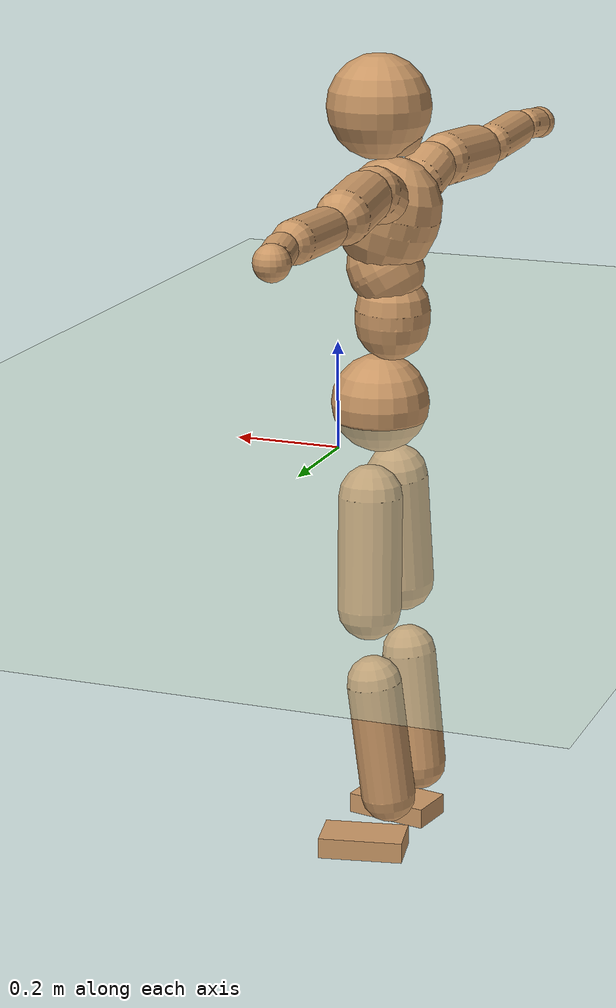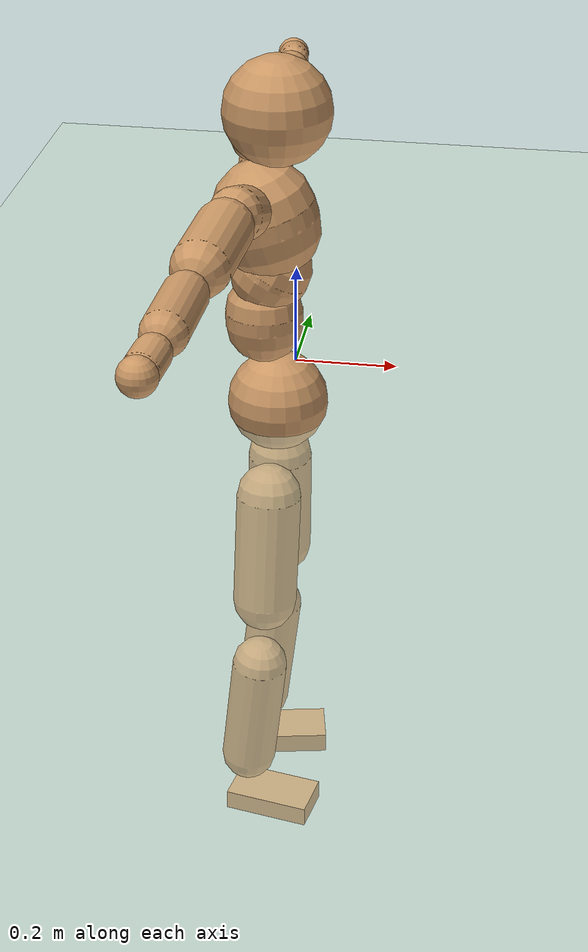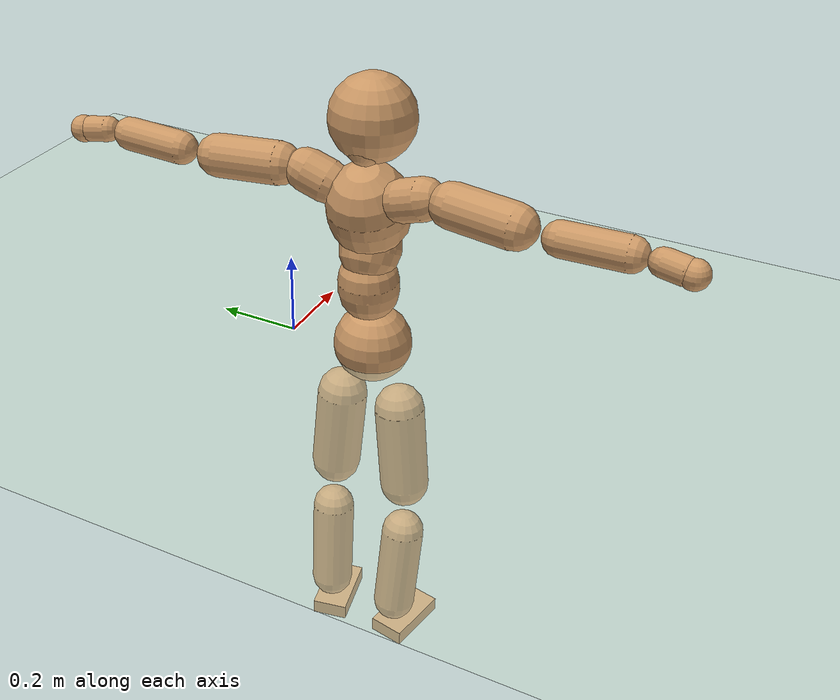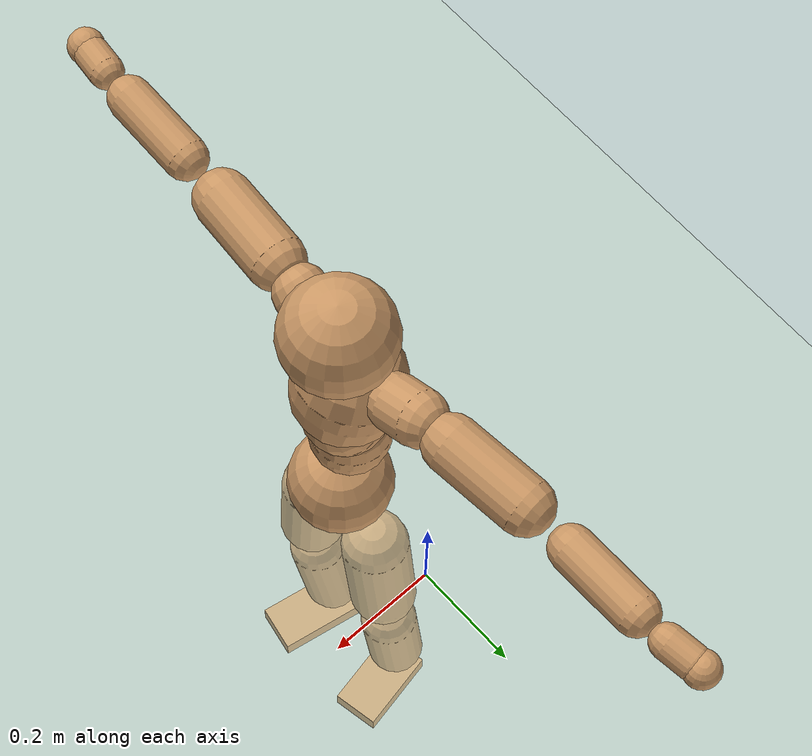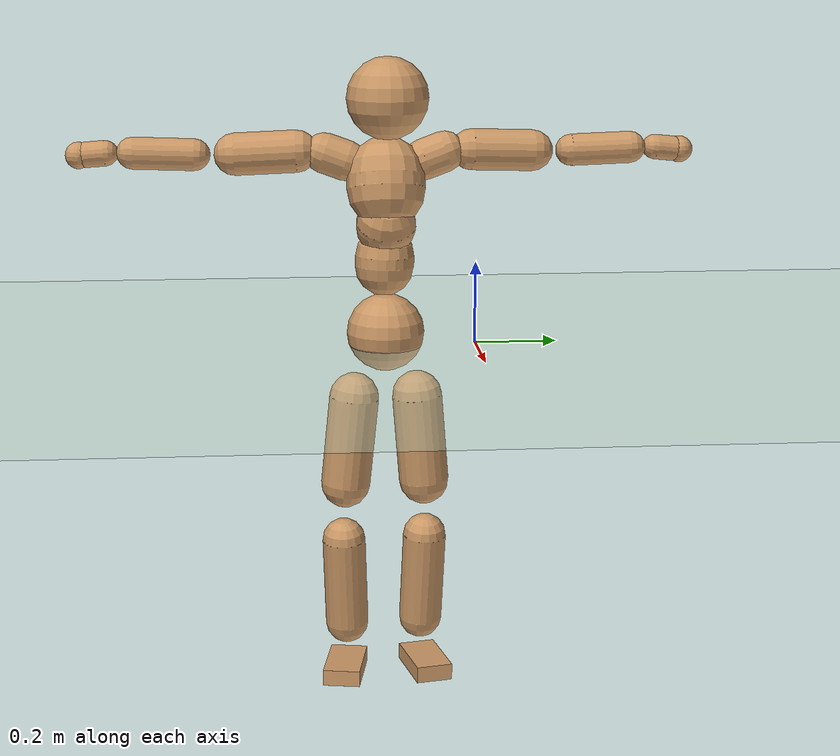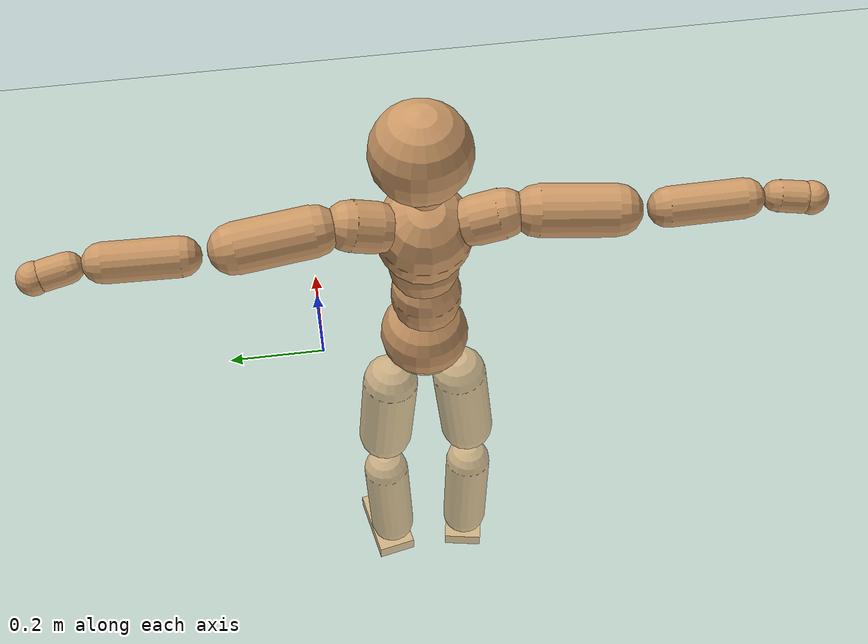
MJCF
<mujoco model="humanoid">
  <compiler coordinate="local"/>
  <default>
    <joint damping="0.0" armature="0.01" stiffness="0.0" limited="true"/>
    <geom conaffinity="1" condim="3" contype="7" margin="0.001" rgba="0.8 0.6 .4 1"/>
  </default>
  <asset>
    <texture type="skybox" builtin="gradient" rgb1=".4 .5 .6" rgb2="0 0 0" width="100" height="100"/>
    <texture builtin="flat" height="1278" mark="cross" markrgb="1 1 1" name="texgeom" random="0.01" rgb1="0.8 0.6 0.4" rgb2="0.8 0.6 0.4" type="cube" width="127"/>
    <texture builtin="checker" height="100" name="texplane" rgb1="0 0 0" rgb2="0.8 0.8 0.8" type="2d" width="100"/>
    <material name="MatPlane" reflectance="0.5" shininess="1" specular="1" texrepeat="60 60" texture="texplane"/>
    <material name="geom" texture="texgeom" texuniform="true"/>
  </asset>
  <worldbody>
    <light cutoff="100" diffuse="1 1 1" dir="-0 0 -1.3" directional="true" exponent="1" pos="0 0 1.3" specular=".1 .1 .1"/>
    <geom conaffinity="1" condim="3" name="floor" pos="0 0 0" rgba="0.8 0.9 0.8 1" size="100 100 .2" type="plane" material="MatPlane"/>
    <body name="Pelvis" pos="-0.0006 -0.2203 0.0304">
      <freejoint name="Pelvis"/>
      <geom type="sphere" contype="1" conaffinity="1" density="500" size="0.0946" pos="0.0000 0.0000 0.0000" name="Pelvis"/>
      <body name="L_Hip" pos="-0.0074 0.0726 -0.0918">
        <joint name="L_Hip_x" type="hinge" pos="0 0 0" axis="1 0 0" stiffness="800" damping="80" armature="0.02" range="-180.0000 180.0000"/>
        <joint name="L_Hip_y" type="hinge" pos="0 0 0" axis="0 1 0" stiffness="800" damping="80" armature="0.02" range="-180.0000 180.0000"/>
        <joint name="L_Hip_z" type="hinge" pos="0 0 0" axis="0 0 1" stiffness="800" damping="80" armature="0.02" range="-180.0000 180.0000"/>
        <geom type="capsule" contype="1" conaffinity="1" density="500" fromto="-0.0014 0.0061 -0.0730 -0.0055 0.0243 -0.2921" size="0.0615" name="L_Hip"/>
        <body name="L_Knee" pos="-0.0069 0.0304 -0.3652">
          <joint name="L_Knee_x" type="hinge" pos="0 0 0" axis="1 0 0" stiffness="800" damping="80" armature="0.02" range="-180.0000 180.0000"/>
          <joint name="L_Knee_y" type="hinge" pos="0 0 0" axis="0 1 0" stiffness="800" damping="80" armature="0.02" range="-180.0000 180.0000"/>
          <joint name="L_Knee_z" type="hinge" pos="0 0 0" axis="0 0 1" stiffness="800" damping="80" armature="0.02" range="-180.0000 180.0000"/>
          <geom type="capsule" contype="1" conaffinity="1" density="500" fromto="-0.0089 -0.0024 -0.0773 -0.0354 -0.0096 -0.3093" size="0.0534" name="L_Knee"/>
          <body name="L_Ankle" pos="-0.0443 -0.012 -0.3867">
            <joint name="L_Ankle_x" type="hinge" pos="0 0 0" axis="1 0 0" stiffness="800" damping="80" armature="0.02" range="-180.0000 180.0000"/>
            <joint name="L_Ankle_y" type="hinge" pos="0 0 0" axis="0 1 0" stiffness="800" damping="80" armature="0.02" range="-180.0000 180.0000"/>
            <joint name="L_Ankle_z" type="hinge" pos="0 0 0" axis="0 0 1" stiffness="800" damping="80" armature="0.02" range="-180.0000 180.0000"/>
            <geom type="box" contype="1" conaffinity="1" density="500" pos="0.0579 0.0114 -0.0276" size="0.0825 0.0455 0.0205" quat="0.9953 0.0000 0.0000 0.0973" name="L_Ankle"/>
            <body name="L_Toe" pos="0.1158 0.0228 -0.0552">
              <joint name="L_Toe_x" type="hinge" pos="0 0 0" axis="1 0 0" stiffness="500" damping="50" armature="0.02" range="-180.0000 180.0000"/>
              <joint name="L_Toe_y" type="hinge" pos="0 0 0" axis="0 1 0" stiffness="500" damping="50" armature="0.02" range="-180.0000 180.0000"/>
              <joint name="L_Toe_z" type="hinge" pos="0 0 0" axis="0 0 1" stiffness="500" damping="50" armature="0.02" range="-180.0000 180.0000"/>
              <geom type="box" contype="1" conaffinity="1" density="500" pos="0.0000 0.0000 0.0271" size="0.0009 0.0023 0.001" quat="0.9946 0.0000 0.0000 0.1038" name="L_Toe"/>
            </body>
          </body>
        </body>
      </body>
      <body name="R_Hip" pos="-0.0037 -0.07 -0.0911">
        <joint name="R_Hip_x" type="hinge" pos="0 0 0" axis="1 0 0" stiffness="800" damping="80" armature="0.02" range="-180.0000 180.0000"/>
        <joint name="R_Hip_y" type="hinge" pos="0 0 0" axis="0 1 0" stiffness="800" damping="80" armature="0.02" range="-180.0000 180.0000"/>
        <joint name="R_Hip_z" type="hinge" pos="0 0 0" axis="0 0 1" stiffness="800" damping="80" armature="0.02" range="-180.0000 180.0000"/>
        <geom type="capsule" contype="1" conaffinity="1" density="500" fromto="-0.0018 -0.0072 -0.0745 -0.0073 -0.0289 -0.2981" size="0.0609" name="R_Hip"/>
        <body name="R_Knee" pos="-0.0092 -0.0362 -0.3727">
          <joint name="R_Knee_x" type="hinge" pos="0 0 0" axis="1 0 0" stiffness="800" damping="80" armature="0.02" range="-180.0000 180.0000"/>
          <joint name="R_Knee_y" type="hinge" pos="0 0 0" axis="0 1 0" stiffness="800" damping="80" armature="0.02" range="-180.0000 180.0000"/>
          <joint name="R_Knee_z" type="hinge" pos="0 0 0" axis="0 0 1" stiffness="800" damping="80" armature="0.02" range="-180.0000 180.0000"/>
          <geom type="capsule" contype="1" conaffinity="1" density="500" fromto="-0.0085 0.0029 -0.0775 -0.0341 0.0115 -0.3100" size="0.0536" name="R_Knee"/>
          <body name="R_Ankle" pos="-0.0426 0.0144 -0.3875">
            <joint name="R_Ankle_x" type="hinge" pos="0 0 0" axis="1 0 0" stiffness="800" damping="80" armature="0.02" range="-180.0000 180.0000"/>
            <joint name="R_Ankle_y" type="hinge" pos="0 0 0" axis="0 1 0" stiffness="800" damping="80" armature="0.02" range="-180.0000 180.0000"/>
            <joint name="R_Ankle_z" type="hinge" pos="0 0 0" axis="0 0 1" stiffness="800" damping="80" armature="0.02" range="-180.0000 180.0000"/>
            <geom type="box" contype="1" conaffinity="1" density="500" pos="0.0596 -0.0109 -0.0233" size="0.0837 0.0461 0.0201" quat="0.9959 0.0000 0.0000 -0.0906" name="R_Ankle"/>
            <body name="R_Toe" pos="0.1192 -0.0219 -0.0466">
              <joint name="R_Toe_x" type="hinge" pos="0 0 0" axis="1 0 0" stiffness="500" damping="50" armature="0.02" range="-180.0000 180.0000"/>
              <joint name="R_Toe_y" type="hinge" pos="0 0 0" axis="0 1 0" stiffness="500" damping="50" armature="0.02" range="-180.0000 180.0000"/>
              <joint name="R_Toe_z" type="hinge" pos="0 0 0" axis="0 0 1" stiffness="500" damping="50" armature="0.02" range="-180.0000 180.0000"/>
              <geom type="box" contype="1" conaffinity="1" density="500" pos="0.0000 0.0000 0.0253" size="0.0009 0.0023 0.0011" quat="0.9967 0.0000 0.0000 -0.0812" name="R_Toe"/>
            </body>
          </body>
        </body>
      </body>
      <body name="Torso" pos="-0.0236 -0.0025 0.1059">
        <joint name="Torso_x" type="hinge" pos="0 0 0" axis="1 0 0" stiffness="1000" damping="100" armature="0.02" range="-180.0000 180.0000"/>
        <joint name="Torso_y" type="hinge" pos="0 0 0" axis="0 1 0" stiffness="1000" damping="100" armature="0.02" range="-180.0000 180.0000"/>
        <joint name="Torso_z" type="hinge" pos="0 0 0" axis="0 0 1" stiffness="1000" damping="100" armature="0.02" range="-180.0000 180.0000"/>
        <geom type="capsule" contype="1" conaffinity="1" density="500" fromto="-0.0015 0.0022 0.0791 -0.0010 0.0015 0.0528" size="0.0719" name="Torso"/>
        <body name="Spine" pos="-0.0026 0.0036 0.1319">
          <joint name="Spine_x" type="hinge" pos="0 0 0" axis="1 0 0" stiffness="1000" damping="100" armature="0.02" range="-180.0000 180.0000"/>
          <joint name="Spine_y" type="hinge" pos="0 0 0" axis="0 1 0" stiffness="1000" damping="100" armature="0.02" range="-180.0000 180.0000"/>
          <joint name="Spine_z" type="hinge" pos="0 0 0" axis="0 0 1" stiffness="1000" damping="100" armature="0.02" range="-180.0000 180.0000"/>
          <geom type="capsule" contype="1" conaffinity="1" density="500" fromto="0.0172 0.0011 0.0304 0.0114 0.0007 0.0203" size="0.0724" name="Spine"/>
          <body name="Chest" pos="0.0286 0.0019 0.0507">
            <joint name="Chest_x" type="hinge" pos="0 0 0" axis="1 0 0" stiffness="1000" damping="100" armature="0.02" range="-180.0000 180.0000"/>
            <joint name="Chest_y" type="hinge" pos="0 0 0" axis="0 1 0" stiffness="1000" damping="100" armature="0.02" range="-180.0000 180.0000"/>
            <joint name="Chest_z" type="hinge" pos="0 0 0" axis="0 0 1" stiffness="1000" damping="100" armature="0.02" range="-180.0000 180.0000"/>
            <geom type="capsule" contype="1" conaffinity="1" density="500" fromto="-0.0277 -0.0007 0.0914 -0.0185 -0.0005 0.0609" size="0.0955" name="Chest"/>
            <body name="Neck" pos="-0.0542 -0.002 0.2163">
              <joint name="Neck_x" type="hinge" pos="0 0 0" axis="1 0 0" stiffness="500" damping="50" armature="0.02" range="-180.0000 180.0000"/>
              <joint name="Neck_y" type="hinge" pos="0 0 0" axis="0 1 0" stiffness="500" damping="50" armature="0.02" range="-180.0000 180.0000"/>
              <joint name="Neck_z" type="hinge" pos="0 0 0" axis="0 0 1" stiffness="500" damping="50" armature="0.02" range="-180.0000 180.0000"/>
              <geom type="capsule" contype="1" conaffinity="1" density="500" fromto="0.0103 0.0007 0.0128 0.0410 0.0030 0.0514" size="0.0413" name="Neck"/>
              <body name="Head" pos="0.0513 0.0037 0.0642">
                <joint name="Head_x" type="hinge" pos="0 0 0" axis="1 0 0" stiffness="500" damping="50" armature="0.02" range="-180.0000 180.0000"/>
                <joint name="Head_y" type="hinge" pos="0 0 0" axis="0 1 0" stiffness="500" damping="50" armature="0.02" range="-180.0000 180.0000"/>
                <joint name="Head_z" type="hinge" pos="0 0 0" axis="0 0 1" stiffness="500" damping="50" armature="0.02" range="-180.0000 180.0000"/>
                <geom type="sphere" contype="1" conaffinity="1" density="500" size="0.0990" pos="0.0000 0.0000 0.0000" name="Head"/>
              </body>
            </body>
            <body name="L_Thorax" pos="-0.0397 0.0746 0.1214">
              <joint name="L_Thorax_x" type="hinge" pos="0 0 0" axis="1 0 0" stiffness="500" damping="50" armature="0.02" range="-180.0000 180.0000"/>
              <joint name="L_Thorax_y" type="hinge" pos="0 0 0" axis="0 1 0" stiffness="500" damping="50" armature="0.02" range="-180.0000 180.0000"/>
              <joint name="L_Thorax_z" type="hinge" pos="0 0 0" axis="0 0 1" stiffness="500" damping="50" armature="0.02" range="-180.0000 180.0000"/>
              <geom type="capsule" contype="1" conaffinity="1" density="500" fromto="-0.0013 0.0168 0.0061 -0.0052 0.0674 0.0245" size="0.0499" name="L_Thorax"/>
              <body name="L_Shoulder" pos="-0.0065 0.0842 0.0306">
                <joint name="L_Shoulder_x" type="hinge" pos="0 0 0" axis="1 0 0" stiffness="500" damping="50" armature="0.02" range="-720.0000 720.0000"/>
                <joint name="L_Shoulder_y" type="hinge" pos="0 0 0" axis="0 1 0" stiffness="500" damping="50" armature="0.02" range="-720.0000 720.0000"/>
                <joint name="L_Shoulder_z" type="hinge" pos="0 0 0" axis="0 0 1" stiffness="500" damping="50" armature="0.02" range="-720.0000 720.0000"/>
                <geom type="capsule" contype="1" conaffinity="1" density="500" fromto="-0.0054 0.0501 -0.0022 -0.0217 0.2004 -0.0088" size="0.05" name="L_Shoulder"/>
                <body name="L_Elbow" pos="-0.0271 0.2505 -0.011">
                  <joint name="L_Elbow_x" type="hinge" pos="0 0 0" axis="1 0 0" stiffness="500" damping="50" armature="0.02" range="-720.0000 720.0000"/>
                  <joint name="L_Elbow_y" type="hinge" pos="0 0 0" axis="0 1 0" stiffness="500" damping="50" armature="0.02" range="-720.0000 720.0000"/>
                  <joint name="L_Elbow_z" type="hinge" pos="0 0 0" axis="0 0 1" stiffness="500" damping="50" armature="0.02" range="-720.0000 720.0000"/>
                  <geom type="capsule" contype="1" conaffinity="1" density="500" fromto="0.0001 0.0475 0.0017 0.0002 0.1898 0.0069" size="0.0389" name="L_Elbow"/>
                  <body name="L_Wrist" pos="0.0003 0.2373 0.0087">
                    <joint name="L_Wrist_x" type="hinge" pos="0 0 0" axis="1 0 0" stiffness="300" damping="30" armature="0.02" range="-180.0000 180.0000"/>
                    <joint name="L_Wrist_y" type="hinge" pos="0 0 0" axis="0 1 0" stiffness="300" damping="30" armature="0.02" range="-180.0000 180.0000"/>
                    <joint name="L_Wrist_z" type="hinge" pos="0 0 0" axis="0 0 1" stiffness="300" damping="30" armature="0.02" range="-180.0000 180.0000"/>
                    <geom type="capsule" contype="1" conaffinity="1" density="500" fromto="-0.0026 0.0159 -0.0019 -0.0105 0.0637 -0.0078" size="0.0302" name="L_Wrist"/>
                    <body name="L_Hand" pos="-0.0131 0.0796 -0.0097">
                      <joint name="L_Hand_x" type="hinge" pos="0 0 0" axis="1 0 0" stiffness="300" damping="30" armature="0.02" range="-180.0000 180.0000"/>
                      <joint name="L_Hand_y" type="hinge" pos="0 0 0" axis="0 1 0" stiffness="300" damping="30" armature="0.02" range="-180.0000 180.0000"/>
                      <joint name="L_Hand_z" type="hinge" pos="0 0 0" axis="0 0 1" stiffness="300" damping="30" armature="0.02" range="-180.0000 180.0000"/>
                      <geom type="sphere" contype="1" conaffinity="1" density="500" size="0.0321" pos="0.0000 0.0000 0.0000" name="L_Hand"/>
                    </body>
                  </body>
                </body>
              </body>
            </body>
            <body name="R_Thorax" pos="-0.0447 -0.0763 0.1194">
              <joint name="R_Thorax_x" type="hinge" pos="0 0 0" axis="1 0 0" stiffness="500" damping="50" armature="0.02" range="-180.0000 180.0000"/>
              <joint name="R_Thorax_y" type="hinge" pos="0 0 0" axis="0 1 0" stiffness="500" damping="50" armature="0.02" range="-180.0000 180.0000"/>
              <joint name="R_Thorax_z" type="hinge" pos="0 0 0" axis="0 0 1" stiffness="500" damping="50" armature="0.02" range="-180.0000 180.0000"/>
              <geom type="capsule" contype="1" conaffinity="1" density="500" fromto="-0.0018 -0.0176 0.0064 -0.0073 -0.0706 0.0254" size="0.0489" name="R_Thorax"/>
              <body name="R_Shoulder" pos="-0.0091 -0.0882 0.0318">
                <joint name="R_Shoulder_x" type="hinge" pos="0 0 0" axis="1 0 0" stiffness="500" damping="50" armature="0.02" range="-720.0000 720.0000"/>
                <joint name="R_Shoulder_y" type="hinge" pos="0 0 0" axis="0 1 0" stiffness="500" damping="50" armature="0.02" range="-720.0000 720.0000"/>
                <joint name="R_Shoulder_z" type="hinge" pos="0 0 0" axis="0 0 1" stiffness="500" damping="50" armature="0.02" range="-720.0000 720.0000"/>
                <geom type="capsule" contype="1" conaffinity="1" density="500" fromto="-0.0040 -0.0492 -0.0025 -0.0160 -0.1967 -0.0100" size="0.0513" name="R_Shoulder"/>
                <body name="R_Elbow" pos="-0.0199 -0.2459 -0.0125">
                  <joint name="R_Elbow_x" type="hinge" pos="0 0 0" axis="1 0 0" stiffness="500" damping="50" armature="0.02" range="-720.0000 720.0000"/>
                  <joint name="R_Elbow_y" type="hinge" pos="0 0 0" axis="0 1 0" stiffness="500" damping="50" armature="0.02" range="-720.0000 720.0000"/>
                  <joint name="R_Elbow_z" type="hinge" pos="0 0 0" axis="0 0 1" stiffness="500" damping="50" armature="0.02" range="-720.0000 720.0000"/>
                  <geom type="capsule" contype="1" conaffinity="1" density="500" fromto="-0.0008 -0.0490 0.0017 -0.0031 -0.1958 0.0068" size="0.039" name="R_Elbow"/>
                  <body name="R_Wrist" pos="-0.0039 -0.2448 0.0085">
                    <joint name="R_Wrist_x" type="hinge" pos="0 0 0" axis="1 0 0" stiffness="300" damping="30" armature="0.02" range="-180.0000 180.0000"/>
                    <joint name="R_Wrist_y" type="hinge" pos="0 0 0" axis="0 1 0" stiffness="300" damping="30" armature="0.02" range="-180.0000 180.0000"/>
                    <joint name="R_Wrist_z" type="hinge" pos="0 0 0" axis="0 0 1" stiffness="300" damping="30" armature="0.02" range="-180.0000 180.0000"/>
                    <geom type="capsule" contype="1" conaffinity="1" density="500" fromto="-0.0021 -0.0161 -0.0015 -0.0083 -0.0644 -0.0058" size="0.0309" name="R_Wrist"/>
                    <body name="R_Hand" pos="-0.0104 -0.0805 -0.0073">
                      <joint name="R_Hand_x" type="hinge" pos="0 0 0" axis="1 0 0" stiffness="300" damping="30" armature="0.02" range="-180.0000 180.0000"/>
                      <joint name="R_Hand_y" type="hinge" pos="0 0 0" axis="0 1 0" stiffness="300" damping="30" armature="0.02" range="-180.0000 180.0000"/>
                      <joint name="R_Hand_z" type="hinge" pos="0 0 0" axis="0 0 1" stiffness="300" damping="30" armature="0.02" range="-180.0000 180.0000"/>
                      <geom type="sphere" contype="1" conaffinity="1" density="500" size="0.0324" pos="0.0000 0.0000 0.0000" name="R_Hand"/>
                    </body>
                  </body>
                </body>
              </body>
            </body>
          </body>
        </body>
      </body>
    </body>
  </worldbody>
  <actuator>
    <motor name="L_Hip_x" joint="L_Hip_x" gear="500"/>
    <motor name="L_Hip_y" joint="L_Hip_y" gear="500"/>
    <motor name="L_Hip_z" joint="L_Hip_z" gear="500"/>
    <motor name="L_Knee_x" joint="L_Knee_x" gear="500"/>
    <motor name="L_Knee_y" joint="L_Knee_y" gear="500"/>
    <motor name="L_Knee_z" joint="L_Knee_z" gear="500"/>
    <motor name="L_Ankle_x" joint="L_Ankle_x" gear="500"/>
    <motor name="L_Ankle_y" joint="L_Ankle_y" gear="500"/>
    <motor name="L_Ankle_z" joint="L_Ankle_z" gear="500"/>
    <motor name="L_Toe_x" joint="L_Toe_x" gear="500"/>
    <motor name="L_Toe_y" joint="L_Toe_y" gear="500"/>
    <motor name="L_Toe_z" joint="L_Toe_z" gear="500"/>
    <motor name="R_Hip_x" joint="R_Hip_x" gear="500"/>
    <motor name="R_Hip_y" joint="R_Hip_y" gear="500"/>
    <motor name="R_Hip_z" joint="R_Hip_z" gear="500"/>
    <motor name="R_Knee_x" joint="R_Knee_x" gear="500"/>
    <motor name="R_Knee_y" joint="R_Knee_y" gear="500"/>
    <motor name="R_Knee_z" joint="R_Knee_z" gear="500"/>
    <motor name="R_Ankle_x" joint="R_Ankle_x" gear="500"/>
    <motor name="R_Ankle_y" joint="R_Ankle_y" gear="500"/>
    <motor name="R_Ankle_z" joint="R_Ankle_z" gear="500"/>
    <motor name="R_Toe_x" joint="R_Toe_x" gear="500"/>
    <motor name="R_Toe_y" joint="R_Toe_y" gear="500"/>
    <motor name="R_Toe_z" joint="R_Toe_z" gear="500"/>
    <motor name="Torso_x" joint="Torso_x" gear="500"/>
    <motor name="Torso_y" joint="Torso_y" gear="500"/>
    <motor name="Torso_z" joint="Torso_z" gear="500"/>
    <motor name="Spine_x" joint="Spine_x" gear="500"/>
    <motor name="Spine_y" joint="Spine_y" gear="500"/>
    <motor name="Spine_z" joint="Spine_z" gear="500"/>
    <motor name="Chest_x" joint="Chest_x" gear="500"/>
    <motor name="Chest_y" joint="Chest_y" gear="500"/>
    <motor name="Chest_z" joint="Chest_z" gear="500"/>
    <motor name="Neck_x" joint="Neck_x" gear="500"/>
    <motor name="Neck_y" joint="Neck_y" gear="500"/>
    <motor name="Neck_z" joint="Neck_z" gear="500"/>
    <motor name="Head_x" joint="Head_x" gear="500"/>
    <motor name="Head_y" joint="Head_y" gear="500"/>
    <motor name="Head_z" joint="Head_z" gear="500"/>
    <motor name="L_Thorax_x" joint="L_Thorax_x" gear="500"/>
    <motor name="L_Thorax_y" joint="L_Thorax_y" gear="500"/>
    <motor name="L_Thorax_z" joint="L_Thorax_z" gear="500"/>
    <motor name="L_Shoulder_x" joint="L_Shoulder_x" gear="500"/>
    <motor name="L_Shoulder_y" joint="L_Shoulder_y" gear="500"/>
    <motor name="L_Shoulder_z" joint="L_Shoulder_z" gear="500"/>
    <motor name="L_Elbow_x" joint="L_Elbow_x" gear="500"/>
    <motor name="L_Elbow_y" joint="L_Elbow_y" gear="500"/>
    <motor name="L_Elbow_z" joint="L_Elbow_z" gear="500"/>
    <motor name="L_Wrist_x" joint="L_Wrist_x" gear="500"/>
    <motor name="L_Wrist_y" joint="L_Wrist_y" gear="500"/>
    <motor name="L_Wrist_z" joint="L_Wrist_z" gear="500"/>
    <motor name="L_Hand_x" joint="L_Hand_x" gear="500"/>
    <motor name="L_Hand_y" joint="L_Hand_y" gear="500"/>
    <motor name="L_Hand_z" joint="L_Hand_z" gear="500"/>
    <motor name="R_Thorax_x" joint="R_Thorax_x" gear="500"/>
    <motor name="R_Thorax_y" joint="R_Thorax_y" gear="500"/>
    <motor name="R_Thorax_z" joint="R_Thorax_z" gear="500"/>
    <motor name="R_Shoulder_x" joint="R_Shoulder_x" gear="500"/>
    <motor name="R_Shoulder_y" joint="R_Shoulder_y" gear="500"/>
    <motor name="R_Shoulder_z" joint="R_Shoulder_z" gear="500"/>
    <motor name="R_Elbow_x" joint="R_Elbow_x" gear="500"/>
    <motor name="R_Elbow_y" joint="R_Elbow_y" gear="500"/>
    <motor name="R_Elbow_z" joint="R_Elbow_z" gear="500"/>
    <motor name="R_Wrist_x" joint="R_Wrist_x" gear="500"/>
    <motor name="R_Wrist_y" joint="R_Wrist_y" gear="500"/>
    <motor name="R_Wrist_z" joint="R_Wrist_z" gear="500"/>
    <motor name="R_Hand_x" joint="R_Hand_x" gear="500"/>
    <motor name="R_Hand_y" joint="R_Hand_y" gear="500"/>
    <motor name="R_Hand_z" joint="R_Hand_z" gear="500"/>
  </actuator>
  <contact>
    <exclude body1="Torso" body2="Chest"/>
    <exclude body1="Head" body2="Chest"/>
    <exclude body1="R_Knee" body2="R_Toe"/>
    <exclude body1="R_Knee" body2="L_Ankle"/>
    <exclude body1="R_Knee" body2="L_Toe"/>
    <exclude body1="L_Knee" body2="L_Toe"/>
    <exclude body1="L_Knee" body2="R_Ankle"/>
    <exclude body1="L_Knee" body2="R_Toe"/>
    <exclude body1="L_Shoulder" body2="Chest"/>
    <exclude body1="R_Shoulder" body2="Chest"/>
  </contact>
  <sensor/>
  <size njmax="700" nconmax="700"/>
</mujoco>
